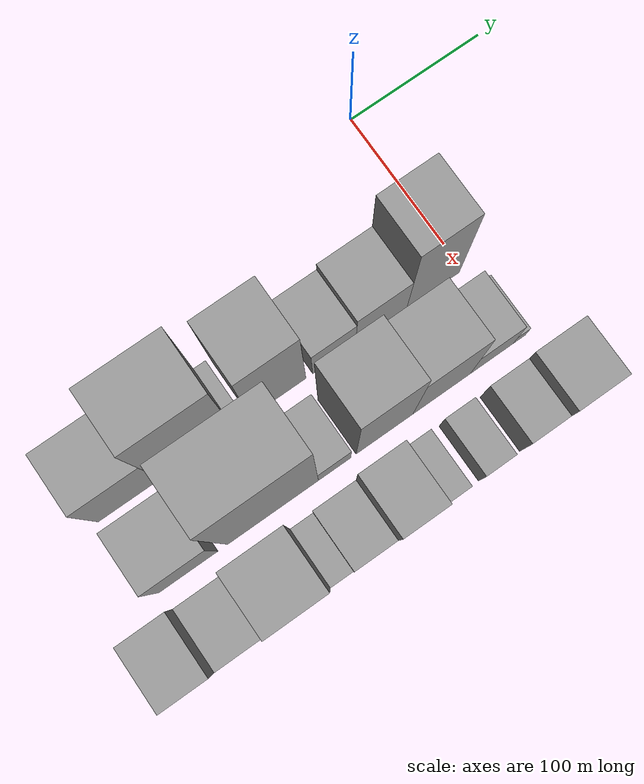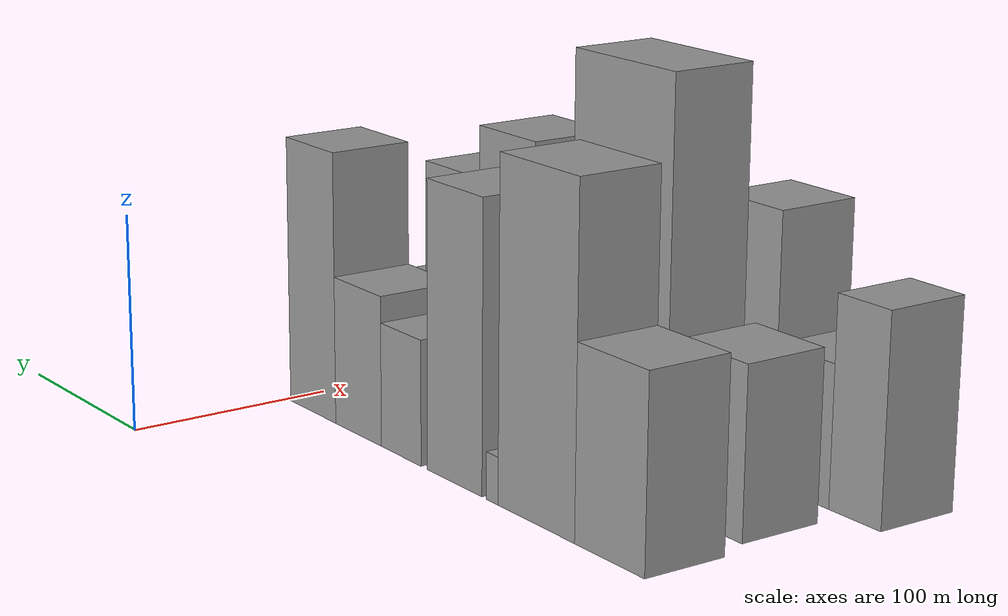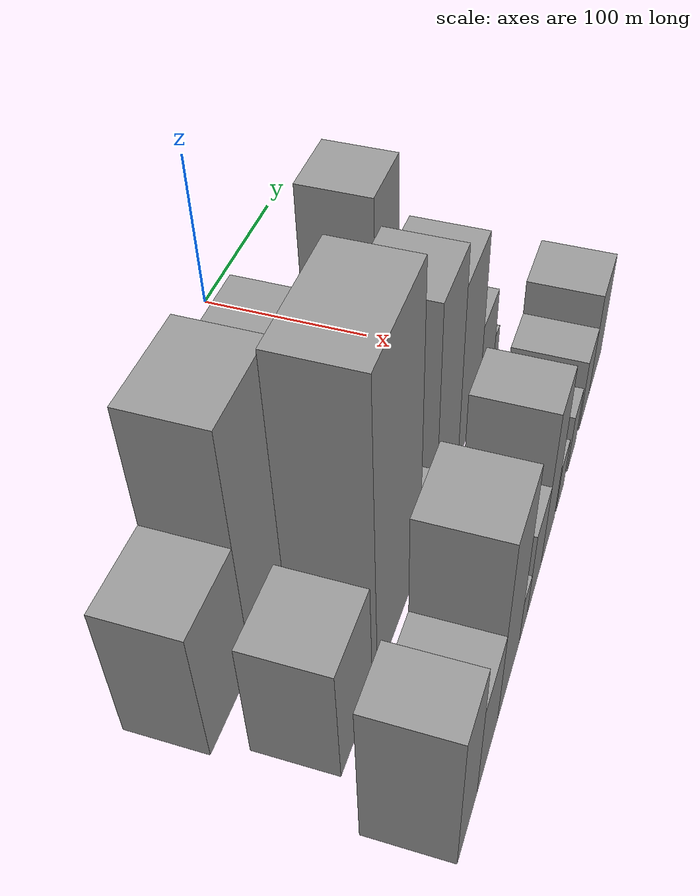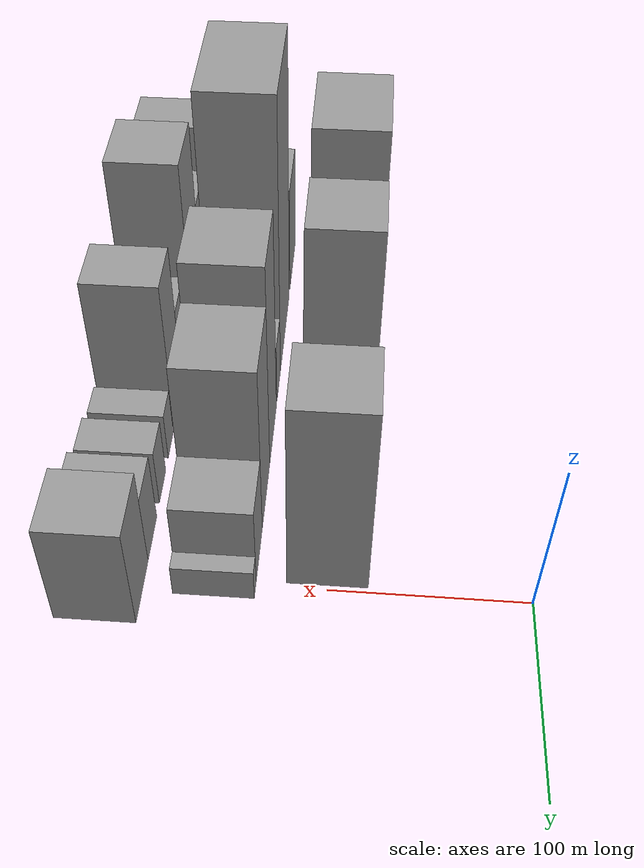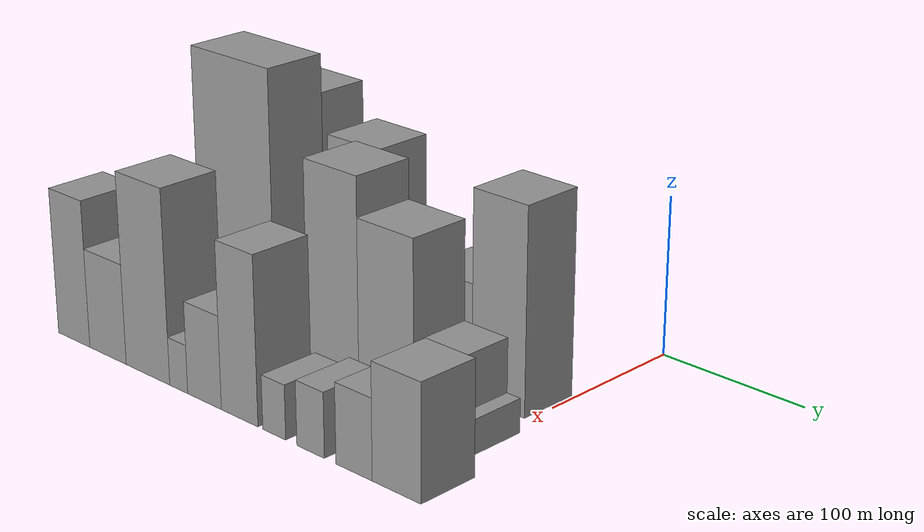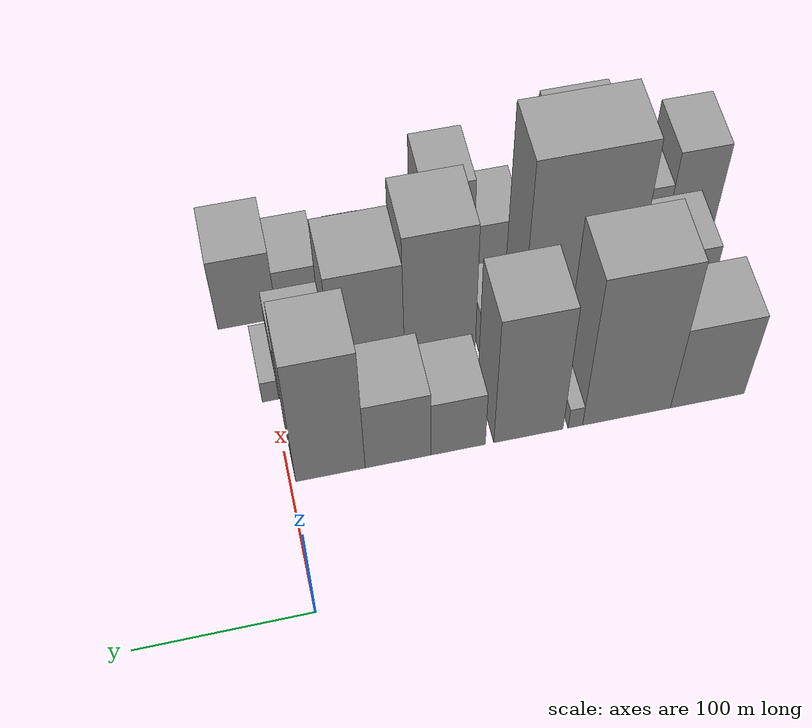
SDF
<sdf version="1.6">
 <world name="default">
  <model name="building_9">
   <static>1</static>
   <pose>100.0000 -245.6780 0 0.000000 0.000000 0.000000</pose>
   <link name="link">
    <pose>0 0 42.00 0 0 0</pose>
    <collision name="collision"><geometry><box><size>40.0000 44.7058 84.0000</size></box></geometry></collision>
    <visual name="visual">
     <cast_shadows>0</cast_shadows>
     <geometry><box><size>40.0000 44.7058 84.0000</size></box></geometry>
     <material>
      <script>
       <uri>model://grey_wall/materials/scripts</uri>
       <uri>model://grey_wall/materials/textures</uri>
       <name>vrc/grey_wall</name>
      </script>
     </material>
    </visual>
   </link>
  </model>
  <model name="building_10">
   <static>1</static>
   <pose>100.0000 -196.9684 0 0.000000 0.000000 0.000000</pose>
   <link name="link">
    <pose>0 0 75.00 0 0 0</pose>
    <collision name="collision"><geometry><box><size>40.0000 52.7134 150.0000</size></box></geometry></collision>
    <visual name="visual">
     <cast_shadows>0</cast_shadows>
     <geometry><box><size>40.0000 52.7134 150.0000</size></box></geometry>
     <material>
      <script>
       <uri>model://grey_wall/materials/scripts</uri>
       <uri>model://grey_wall/materials/textures</uri>
       <name>vrc/grey_wall</name>
      </script>
     </material>
    </visual>
   </link>
  </model>
  <model name="building_11">
   <static>1</static>
   <pose>100.0000 -166.2816 0 0.000000 0.000000 0.000000</pose>
   <link name="link">
    <pose>0 0 10.50 0 0 0</pose>
    <collision name="collision"><geometry><box><size>40.0000 8.6601 21.0000</size></box></geometry></collision>
    <visual name="visual">
     <cast_shadows>0</cast_shadows>
     <geometry><box><size>40.0000 8.6601 21.0000</size></box></geometry>
     <material>
      <script>
       <uri>model://grey_wall/materials/scripts</uri>
       <uri>model://grey_wall/materials/textures</uri>
       <name>vrc/grey_wall</name>
      </script>
     </material>
    </visual>
   </link>
  </model>
  <model name="building_12">
   <static>1</static>
   <pose>100.0000 -138.4659 0 0.000000 0.000000 0.000000</pose>
   <link name="link">
    <pose>0 0 64.50 0 0 0</pose>
    <collision name="collision"><geometry><box><size>40.0000 40.9712 129.0000</size></box></geometry></collision>
    <visual name="visual">
     <cast_shadows>0</cast_shadows>
     <geometry><box><size>40.0000 40.9712 129.0000</size></box></geometry>
     <material>
      <script>
       <uri>model://grey_wall/materials/scripts</uri>
       <uri>model://grey_wall/materials/textures</uri>
       <name>vrc/grey_wall</name>
      </script>
     </material>
    </visual>
   </link>
  </model>
  <model name="building_13">
   <static>1</static>
   <pose>100.0000 -97.1301 0 0.000000 0.000000 0.000000</pose>
   <link name="link">
    <pose>0 0 28.50 0 0 0</pose>
    <collision name="collision"><geometry><box><size>40.0000 31.7005 57.0000</size></box></geometry></collision>
    <visual name="visual">
     <cast_shadows>0</cast_shadows>
     <geometry><box><size>40.0000 31.7005 57.0000</size></box></geometry>
     <material>
      <script>
       <uri>model://grey_wall/materials/scripts</uri>
       <uri>model://grey_wall/materials/textures</uri>
       <name>vrc/grey_wall</name>
      </script>
     </material>
    </visual>
   </link>
  </model>
  <model name="building_14">
   <static>1</static>
   <pose>100.0000 -62.0921 0 0.000000 0.000000 0.000000</pose>
   <link name="link">
    <pose>0 0 34.50 0 0 0</pose>
    <collision name="collision"><geometry><box><size>40.0000 38.3755 69.0000</size></box></geometry></collision>
    <visual name="visual">
     <cast_shadows>0</cast_shadows>
     <geometry><box><size>40.0000 38.3755 69.0000</size></box></geometry>
     <material>
      <script>
       <uri>model://grey_wall/materials/scripts</uri>
       <uri>model://grey_wall/materials/textures</uri>
       <name>vrc/grey_wall</name>
      </script>
     </material>
    </visual>
   </link>
  </model>
  <model name="building_15">
   <static>1</static>
   <pose>100.0000 -22.9178 0 0.000000 0.000000 0.000000</pose>
   <link name="link">
    <pose>0 0 63.00 0 0 0</pose>
    <collision name="collision"><geometry><box><size>40.0000 39.9730 126.0000</size></box></geometry></collision>
    <visual name="visual">
     <cast_shadows>0</cast_shadows>
     <geometry><box><size>40.0000 39.9730 126.0000</size></box></geometry>
     <material>
      <script>
       <uri>model://grey_wall/materials/scripts</uri>
       <uri>model://grey_wall/materials/textures</uri>
       <name>vrc/grey_wall</name>
      </script>
     </material>
    </visual>
   </link>
  </model>
  <model name="building_42">
   <static>1</static>
   <pose>155.0000 -240.2338 0 0.000000 0.000000 0.000000</pose>
   <link name="link">
    <pose>0 0 37.50 0 0 0</pose>
    <collision name="collision"><geometry><box><size>40.0000 41.6747 75.0000</size></box></geometry></collision>
    <visual name="visual">
     <cast_shadows>0</cast_shadows>
     <geometry><box><size>40.0000 41.6747 75.0000</size></box></geometry>
     <material>
      <script>
       <uri>model://grey_wall/materials/scripts</uri>
       <uri>model://grey_wall/materials/textures</uri>
       <name>vrc/grey_wall</name>
      </script>
     </material>
    </visual>
   </link>
  </model>
  <model name="building_43">
   <static>1</static>
   <pose>155.0000 -179.7584 0 0.000000 0.000000 0.000000</pose>
   <link name="link">
    <pose>0 0 91.50 0 0 0</pose>
    <collision name="collision"><geometry><box><size>40.0000 65.2762 183.0000</size></box></geometry></collision>
    <visual name="visual">
     <cast_shadows>0</cast_shadows>
     <geometry><box><size>40.0000 65.2762 183.0000</size></box></geometry>
     <material>
      <script>
       <uri>model://grey_wall/materials/scripts</uri>
       <uri>model://grey_wall/materials/textures</uri>
       <name>vrc/grey_wall</name>
      </script>
     </material>
    </visual>
   </link>
  </model>
  <model name="building_44">
   <static>1</static>
   <pose>155.0000 -135.3609 0 0.000000 0.000000 0.000000</pose>
   <link name="link">
    <pose>0 0 21.00 0 0 0</pose>
    <collision name="collision"><geometry><box><size>40.0000 23.5189 42.0000</size></box></geometry></collision>
    <visual name="visual">
     <cast_shadows>0</cast_shadows>
     <geometry><box><size>40.0000 23.5189 42.0000</size></box></geometry>
     <material>
      <script>
       <uri>model://grey_wall/materials/scripts</uri>
       <uri>model://grey_wall/materials/textures</uri>
       <name>vrc/grey_wall</name>
      </script>
     </material>
    </visual>
   </link>
  </model>
  <model name="building_45">
   <static>1</static>
   <pose>155.0000 -98.6651 0 0.000000 0.000000 0.000000</pose>
   <link name="link">
    <pose>0 0 69.00 0 0 0</pose>
    <collision name="collision"><geometry><box><size>40.0000 41.8726 138.0000</size></box></geometry></collision>
    <visual name="visual">
     <cast_shadows>0</cast_shadows>
     <geometry><box><size>40.0000 41.8726 138.0000</size></box></geometry>
     <material>
      <script>
       <uri>model://grey_wall/materials/scripts</uri>
       <uri>model://grey_wall/materials/textures</uri>
       <name>vrc/grey_wall</name>
      </script>
     </material>
    </visual>
   </link>
  </model>
  <model name="building_46">
   <static>1</static>
   <pose>155.0000 -56.2733 0 0.000000 0.000000 0.000000</pose>
   <link name="link">
    <pose>0 0 57.00 0 0 0</pose>
    <collision name="collision"><geometry><box><size>40.0000 42.9110 114.0000</size></box></geometry></collision>
    <visual name="visual">
     <cast_shadows>0</cast_shadows>
     <geometry><box><size>40.0000 42.9110 114.0000</size></box></geometry>
     <material>
      <script>
       <uri>model://grey_wall/materials/scripts</uri>
       <uri>model://grey_wall/materials/textures</uri>
       <name>vrc/grey_wall</name>
      </script>
     </material>
    </visual>
   </link>
  </model>
  <model name="building_47">
   <static>1</static>
   <pose>155.0000 -18.7076 0 0.000000 0.000000 0.000000</pose>
   <link name="link">
    <pose>0 0 27.00 0 0 0</pose>
    <collision name="collision"><geometry><box><size>40.0000 32.2204 54.0000</size></box></geometry></collision>
    <visual name="visual">
     <cast_shadows>0</cast_shadows>
     <geometry><box><size>40.0000 32.2204 54.0000</size></box></geometry>
     <material>
      <script>
       <uri>model://grey_wall/materials/scripts</uri>
       <uri>model://grey_wall/materials/textures</uri>
       <name>vrc/grey_wall</name>
      </script>
     </material>
    </visual>
   </link>
  </model>
  <model name="building_48">
   <static>1</static>
   <pose>155.0000 2.2678 0 0.000000 0.000000 0.000000</pose>
   <link name="link">
    <pose>0 0 10.50 0 0 0</pose>
    <collision name="collision"><geometry><box><size>40.0000 9.7306 21.0000</size></box></geometry></collision>
    <visual name="visual">
     <cast_shadows>0</cast_shadows>
     <geometry><box><size>40.0000 9.7306 21.0000</size></box></geometry>
     <material>
      <script>
       <uri>model://grey_wall/materials/scripts</uri>
       <uri>model://grey_wall/materials/textures</uri>
       <name>vrc/grey_wall</name>
      </script>
     </material>
    </visual>
   </link>
  </model>
  <model name="building_71">
   <static>1</static>
   <pose>210.0000 -266.9155 0 0.000000 0.000000 0.000000</pose>
   <link name="link">
    <pose>0 0 46.50 0 0 0</pose>
    <collision name="collision"><geometry><box><size>40.0000 30.8478 93.0000</size></box></geometry></collision>
    <visual name="visual">
     <cast_shadows>0</cast_shadows>
     <geometry><box><size>40.0000 30.8478 93.0000</size></box></geometry>
     <material>
      <script>
       <uri>model://grey_wall/materials/scripts</uri>
       <uri>model://grey_wall/materials/textures</uri>
       <name>vrc/grey_wall</name>
      </script>
     </material>
    </visual>
   </link>
  </model>
  <model name="building_72">
   <static>1</static>
   <pose>210.0000 -234.1289 0 0.000000 0.000000 0.000000</pose>
   <link name="link">
    <pose>0 0 31.50 0 0 0</pose>
    <collision name="collision"><geometry><box><size>40.0000 34.7255 63.0000</size></box></geometry></collision>
    <visual name="visual">
     <cast_shadows>0</cast_shadows>
     <geometry><box><size>40.0000 34.7255 63.0000</size></box></geometry>
     <material>
      <script>
       <uri>model://grey_wall/materials/scripts</uri>
       <uri>model://grey_wall/materials/textures</uri>
       <name>vrc/grey_wall</name>
      </script>
     </material>
    </visual>
   </link>
  </model>
  <model name="building_73">
   <static>1</static>
   <pose>210.0000 -196.7771 0 0.000000 0.000000 0.000000</pose>
   <link name="link">
    <pose>0 0 60.00 0 0 0</pose>
    <collision name="collision"><geometry><box><size>40.0000 39.9782 120.0000</size></box></geometry></collision>
    <visual name="visual">
     <cast_shadows>0</cast_shadows>
     <geometry><box><size>40.0000 39.9782 120.0000</size></box></geometry>
     <material>
      <script>
       <uri>model://grey_wall/materials/scripts</uri>
       <uri>model://grey_wall/materials/textures</uri>
       <name>vrc/grey_wall</name>
      </script>
     </material>
    </visual>
   </link>
  </model>
  <model name="building_74">
   <static>1</static>
   <pose>210.0000 -168.7829 0 0.000000 0.000000 0.000000</pose>
   <link name="link">
    <pose>0 0 15.00 0 0 0</pose>
    <collision name="collision"><geometry><box><size>40.0000 16.0102 30.0000</size></box></geometry></collision>
    <visual name="visual">
     <cast_shadows>0</cast_shadows>
     <geometry><box><size>40.0000 16.0102 30.0000</size></box></geometry>
     <material>
      <script>
       <uri>model://grey_wall/materials/scripts</uri>
       <uri>model://grey_wall/materials/textures</uri>
       <name>vrc/grey_wall</name>
      </script>
     </material>
    </visual>
   </link>
  </model>
  <model name="building_75">
   <static>1</static>
   <pose>210.0000 -146.1226 0 0.000000 0.000000 0.000000</pose>
   <link name="link">
    <pose>0 0 28.50 0 0 0</pose>
    <collision name="collision"><geometry><box><size>40.0000 29.3104 57.0000</size></box></geometry></collision>
    <visual name="visual">
     <cast_shadows>0</cast_shadows>
     <geometry><box><size>40.0000 29.3104 57.0000</size></box></geometry>
     <material>
      <script>
       <uri>model://grey_wall/materials/scripts</uri>
       <uri>model://grey_wall/materials/textures</uri>
       <name>vrc/grey_wall</name>
      </script>
     </material>
    </visual>
   </link>
  </model>
  <model name="building_76">
   <static>1</static>
   <pose>210.0000 -116.0701 0 0.000000 0.000000 0.000000</pose>
   <link name="link">
    <pose>0 0 51.00 0 0 0</pose>
    <collision name="collision"><geometry><box><size>40.0000 30.7946 102.0000</size></box></geometry></collision>
    <visual name="visual">
     <cast_shadows>0</cast_shadows>
     <geometry><box><size>40.0000 30.7946 102.0000</size></box></geometry>
     <material>
      <script>
       <uri>model://grey_wall/materials/scripts</uri>
       <uri>model://grey_wall/materials/textures</uri>
       <name>vrc/grey_wall</name>
      </script>
     </material>
    </visual>
   </link>
  </model>
  <model name="building_77">
   <static>1</static>
   <pose>210.0000 -87.3403 0 0.000000 0.000000 0.000000</pose>
   <link name="link">
    <pose>0 0 16.50 0 0 0</pose>
    <collision name="collision"><geometry><box><size>40.0000 18.6649 33.0000</size></box></geometry></collision>
    <visual name="visual">
     <cast_shadows>0</cast_shadows>
     <geometry><box><size>40.0000 18.6649 33.0000</size></box></geometry>
     <material>
      <script>
       <uri>model://grey_wall/materials/scripts</uri>
       <uri>model://grey_wall/materials/textures</uri>
       <name>vrc/grey_wall</name>
      </script>
     </material>
    </visual>
   </link>
  </model>
  <model name="building_78">
   <static>1</static>
   <pose>210.0000 -58.1697 0 0.000000 0.000000 0.000000</pose>
   <link name="link">
    <pose>0 0 19.50 0 0 0</pose>
    <collision name="collision"><geometry><box><size>40.0000 21.6764 39.0000</size></box></geometry></collision>
    <visual name="visual">
     <cast_shadows>0</cast_shadows>
     <geometry><box><size>40.0000 21.6764 39.0000</size></box></geometry>
     <material>
      <script>
       <uri>model://grey_wall/materials/scripts</uri>
       <uri>model://grey_wall/materials/textures</uri>
       <name>vrc/grey_wall</name>
      </script>
     </material>
    </visual>
   </link>
  </model>
  <model name="building_79">
   <static>1</static>
   <pose>210.0000 -24.6039 0 0.000000 0.000000 0.000000</pose>
   <link name="link">
    <pose>0 0 24.00 0 0 0</pose>
    <collision name="collision"><geometry><box><size>40.0000 27.4551 48.0000</size></box></geometry></collision>
    <visual name="visual">
     <cast_shadows>0</cast_shadows>
     <geometry><box><size>40.0000 27.4551 48.0000</size></box></geometry>
     <material>
      <script>
       <uri>model://grey_wall/materials/scripts</uri>
       <uri>model://grey_wall/materials/textures</uri>
       <name>vrc/grey_wall</name>
      </script>
     </material>
    </visual>
   </link>
  </model>
  <model name="building_80">
   <static>1</static>
   <pose>210.0000 7.0162 0 0.000000 0.000000 0.000000</pose>
   <link name="link">
    <pose>0 0 34.50 0 0 0</pose>
    <collision name="collision"><geometry><box><size>40.0000 35.7853 69.0000</size></box></geometry></collision>
    <visual name="visual">
     <cast_shadows>0</cast_shadows>
     <geometry><box><size>40.0000 35.7853 69.0000</size></box></geometry>
     <material>
      <script>
       <uri>model://grey_wall/materials/scripts</uri>
       <uri>model://grey_wall/materials/textures</uri>
       <name>vrc/grey_wall</name>
      </script>
     </material>
    </visual>
   </link>
  </model>
 </world>
</sdf>
